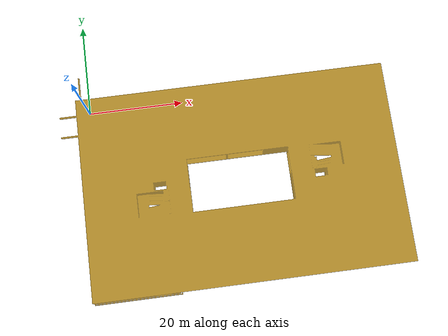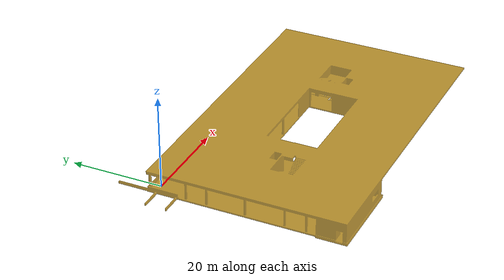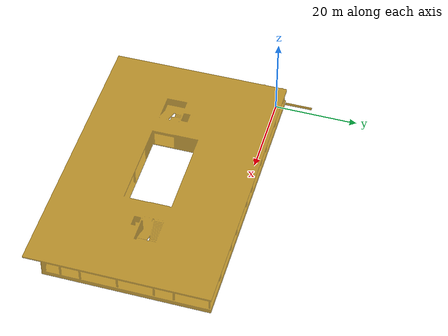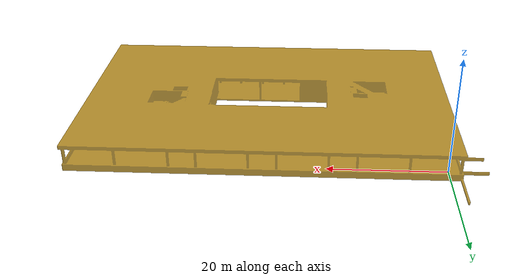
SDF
<?xml version="1.0" ?>
<!--
  You can echo lidar messages using:
    ign topic -e -t /lidar
-->
<sdf version="1.6">
  <world name="boeblingen">
    <physics name="1ms" type="ignored">
      <max_step_size>0.01</max_step_size>
      <real_time_factor>1.0</real_time_factor>
    </physics>

    <gui fullscreen="0">

      <!-- 3D scene -->
      <plugin filename="MinimalScene" name="3D View">
        <ignition-gui>
          <title>3D View</title>
          <property type="bool" key="showTitleBar">false</property>
          <property type="string" key="state">docked</property>
        </ignition-gui>

        <engine>ogre2</engine>
        <scene>scene</scene>
        <ambient_light>0.4 0.4 0.4</ambient_light>
        <background_color>0.8 0.8 0.8</background_color>
        <camera_pose>-6 0 6 0 0.5 0</camera_pose>
      </plugin>

      <!-- Plugins that add functionality to the scene -->
      <plugin filename="EntityContextMenuPlugin" name="Entity context menu">
        <ignition-gui>
          <property key="state" type="string">floating</property>
          <property key="width" type="double">5</property>
          <property key="height" type="double">5</property>
          <property key="showTitleBar" type="bool">false</property>
        </ignition-gui>
      </plugin>
      <plugin filename="GzSceneManager" name="Scene Manager">
        <ignition-gui>
          <property key="resizable" type="bool">false</property>
          <property key="width" type="double">5</property>
          <property key="height" type="double">5</property>
          <property key="state" type="string">floating</property>
          <property key="showTitleBar" type="bool">false</property>
        </ignition-gui>
      </plugin>
      <plugin filename="InteractiveViewControl" name="Interactive view control">
        <ignition-gui>
          <property key="resizable" type="bool">false</property>
          <property key="width" type="double">5</property>
          <property key="height" type="double">5</property>
          <property key="state" type="string">floating</property>
          <property key="showTitleBar" type="bool">false</property>
        </ignition-gui>
      </plugin>
      <plugin filename="CameraTracking" name="Camera Tracking">
        <ignition-gui>
          <property key="resizable" type="bool">false</property>
          <property key="width" type="double">5</property>
          <property key="height" type="double">5</property>
          <property key="state" type="string">floating</property>
          <property key="showTitleBar" type="bool">false</property>
        </ignition-gui>
      </plugin>
      <!-- World control -->
      <plugin filename="WorldControl" name="World control">
        <ignition-gui>
          <title>World control</title>
          <property type="bool" key="showTitleBar">false</property>
          <property type="bool" key="resizable">false</property>
          <property type="double" key="height">72</property>
          <property type="double" key="width">121</property>
          <property type="double" key="z">1</property>

          <property type="string" key="state">floating</property>
          <anchors target="3D View">
            <line own="left" target="left"/>
            <line own="bottom" target="bottom"/>
          </anchors>
        </ignition-gui>

        <play_pause>true</play_pause>
        <step>true</step>
        <start_paused>true</start_paused>
        <use_event>true</use_event>

      </plugin>

      <!-- World statistics -->
      <plugin filename="WorldStats" name="World stats">
        <ignition-gui>
          <title>World stats</title>
          <property type="bool" key="showTitleBar">false</property>
          <property type="bool" key="resizable">false</property>
          <property type="double" key="height">110</property>
          <property type="double" key="width">290</property>
          <property type="double" key="z">1</property>

          <property type="string" key="state">floating</property>
          <anchors target="3D View">
            <line own="right" target="right"/>
            <line own="bottom" target="bottom"/>
          </anchors>
        </ignition-gui>

        <sim_time>true</sim_time>
        <real_time>true</real_time>
        <real_time_factor>true</real_time_factor>
        <iterations>true</iterations>
      </plugin>

      <!-- Inspector -->
      <plugin filename="ComponentInspector" name="Component inspector">
        <ignition-gui>
          <property type="string" key="state">docked</property>
        </ignition-gui>
      </plugin>

      <!-- Entity tree -->
      <plugin filename="EntityTree" name="Entity tree">
        <ignition-gui>
          <property type="string" key="state">docked</property>
        </ignition-gui>
      </plugin>
    </gui>

    <light type="directional" name="sun">
      <cast_shadows>false</cast_shadows>
      <pose>0 0 80 0 0 0</pose>
      <diffuse>0.8 0.8 0.8 1</diffuse>
      <specular>0.2 0.2 0.2 1</specular>
      <attenuation>
        <range>1000</range>
        <constant>0.9</constant>
        <linear>0.01</linear>
        <quadratic>0.001</quadratic>
      </attenuation>
      <direction>-0.5 0.1 -0.9</direction>
    </light>

    <include>
      <pose>0 0 0 0 0 0</pose>
      <uri>model://boeblingen</uri>
    </include>

  </world>
</sdf>

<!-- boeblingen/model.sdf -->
<sdf version="1.7">
  <model name='boeblingen_construction_site'>
    <pose>0 0 0 0 0 0</pose>
    <static>true</static>
    <link name="building">
      <visual name="building_visual">
        <cast_shadows>true</cast_shadows>
        <geometry>
          <mesh>
            <uri>meshes/building.obj</uri>
          </mesh>
        </geometry>
        <material>
          <ambient>0.7 0.5 0 0.8</ambient>
          <diffuse>0.7 0.5 0 0.8</diffuse>
          <specular>1 1 1 0.8</specular>
        </material>
      </visual>
      <collision name="building_collision">
        <geometry>
          <mesh>
            <uri>meshes/building.obj</uri>
          </mesh>
        </geometry>
      </collision>
    </link>
  </model>
</sdf>
